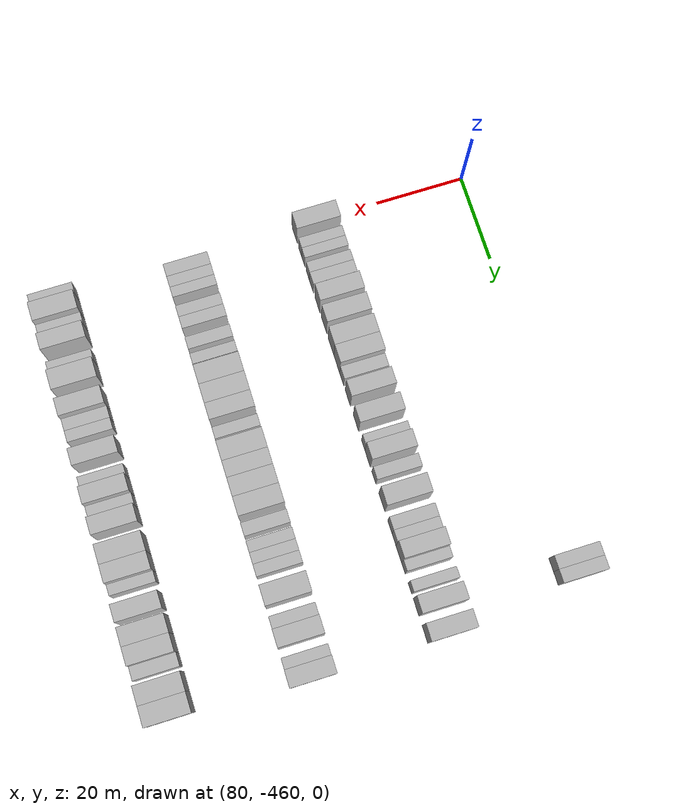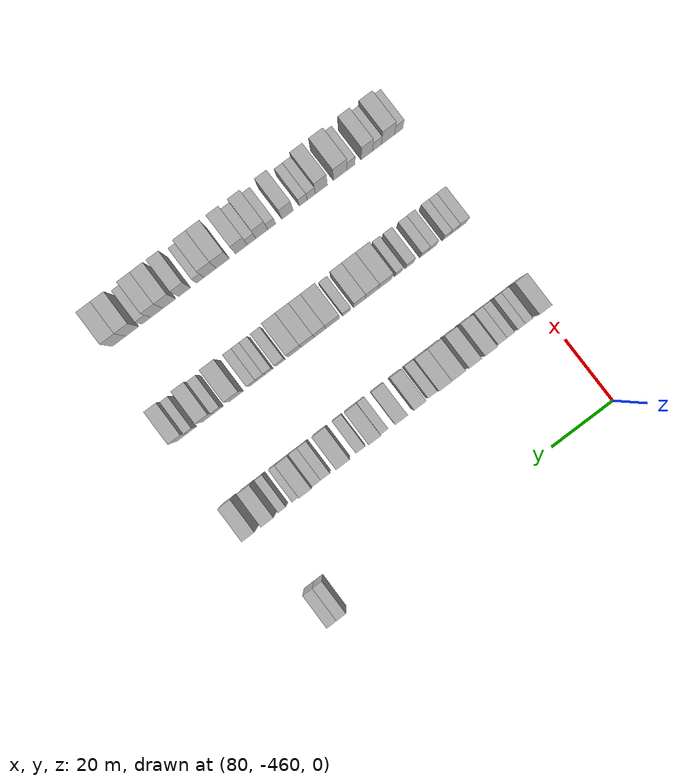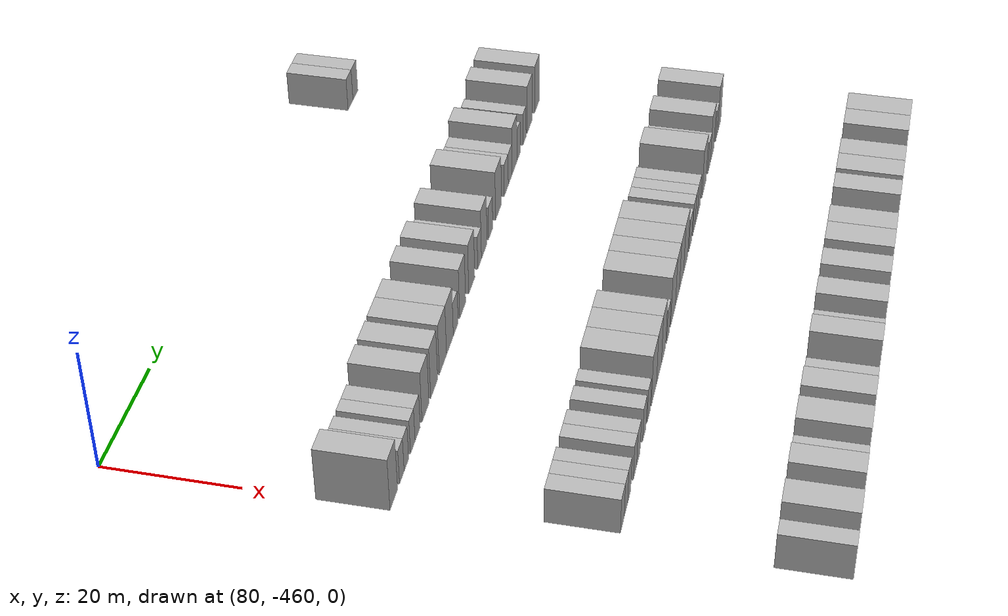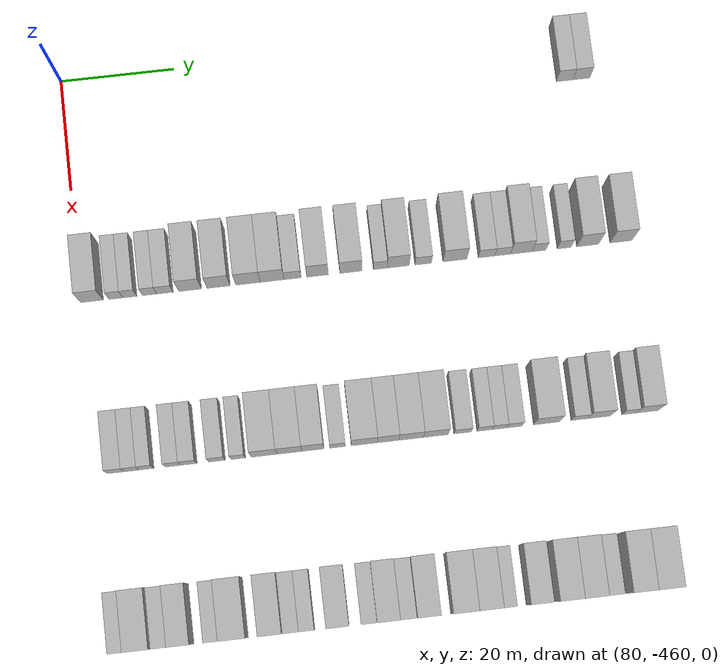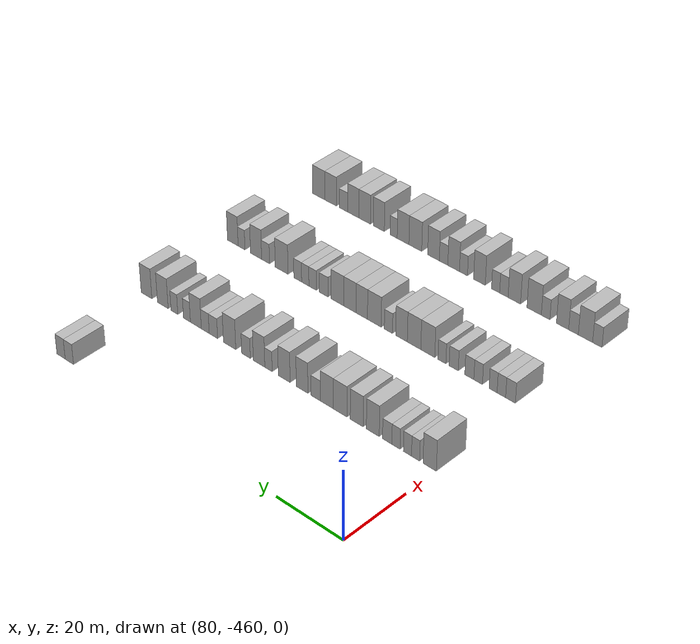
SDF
<sdf version="1.6">
 <world name="default">
  <model name="building_472">
   <static>1</static>
   <pose>85.0000 -371.5227 0 0.000000 0.000000 0.000000</pose>
   <link name="link">
    <pose>0 0 3.00 0 0 0</pose>
    <collision name="collision"><geometry><box><size>10.0000 2.9728 6.0000</size></box></geometry></collision>
    <visual name="visual">
     <cast_shadows>0</cast_shadows>
     <geometry><box><size>10.0000 2.9728 6.0000</size></box></geometry>
     <material>
      <script>
       <uri>model://HANNAS_wall/materials/scripts</uri>
       <uri>model://HANNAS_wall/materials/textures</uri>
       <name>vrc/HANNAS_wall</name>
      </script>
     </material>
    </visual>
   </link>
  </model>
  <model name="building_473">
   <static>1</static>
   <pose>85.0000 -368.5415 0 0.000000 0.000000 0.000000</pose>
   <link name="link">
    <pose>0 0 3.00 0 0 0</pose>
    <collision name="collision"><geometry><box><size>10.0000 2.9896 6.0000</size></box></geometry></collision>
    <visual name="visual">
     <cast_shadows>0</cast_shadows>
     <geometry><box><size>10.0000 2.9896 6.0000</size></box></geometry>
     <material>
      <script>
       <uri>model://HANNAS_wall/materials/scripts</uri>
       <uri>model://HANNAS_wall/materials/textures</uri>
       <name>vrc/HANNAS_wall</name>
      </script>
     </material>
    </visual>
   </link>
  </model>
  <model name="building_681">
   <static>1</static>
   <pose>115.0000 -458.0410 0 0.000000 0.000000 0.000000</pose>
   <link name="link">
    <pose>0 0 4.50 0 0 0</pose>
    <collision name="collision"><geometry><box><size>10.0000 3.9179 9.0000</size></box></geometry></collision>
    <visual name="visual">
     <cast_shadows>0</cast_shadows>
     <geometry><box><size>10.0000 3.9179 9.0000</size></box></geometry>
     <material>
      <script>
       <uri>model://HANNAS_wall/materials/scripts</uri>
       <uri>model://HANNAS_wall/materials/textures</uri>
       <name>vrc/HANNAS_wall</name>
      </script>
     </material>
    </visual>
   </link>
  </model>
  <model name="building_682">
   <static>1</static>
   <pose>115.0000 -453.8759 0 0.000000 0.000000 0.000000</pose>
   <link name="link">
    <pose>0 0 3.00 0 0 0</pose>
    <collision name="collision"><geometry><box><size>10.0000 2.4124 6.0000</size></box></geometry></collision>
    <visual name="visual">
     <cast_shadows>0</cast_shadows>
     <geometry><box><size>10.0000 2.4124 6.0000</size></box></geometry>
     <material>
      <script>
       <uri>model://HANNAS_wall/materials/scripts</uri>
       <uri>model://HANNAS_wall/materials/textures</uri>
       <name>vrc/HANNAS_wall</name>
      </script>
     </material>
    </visual>
   </link>
  </model>
  <model name="building_683">
   <static>1</static>
   <pose>115.0000 -451.4616 0 0.000000 0.000000 0.000000</pose>
   <link name="link">
    <pose>0 0 3.00 0 0 0</pose>
    <collision name="collision"><geometry><box><size>10.0000 2.4162 6.0000</size></box></geometry></collision>
    <visual name="visual">
     <cast_shadows>0</cast_shadows>
     <geometry><box><size>10.0000 2.4162 6.0000</size></box></geometry>
     <material>
      <script>
       <uri>model://HANNAS_wall/materials/scripts</uri>
       <uri>model://HANNAS_wall/materials/textures</uri>
       <name>vrc/HANNAS_wall</name>
      </script>
     </material>
    </visual>
   </link>
  </model>
  <model name="building_684">
   <static>1</static>
   <pose>115.0000 -448.0197 0 0.000000 0.000000 0.000000</pose>
   <link name="link">
    <pose>0 0 3.00 0 0 0</pose>
    <collision name="collision"><geometry><box><size>10.0000 2.4676 6.0000</size></box></geometry></collision>
    <visual name="visual">
     <cast_shadows>0</cast_shadows>
     <geometry><box><size>10.0000 2.4676 6.0000</size></box></geometry>
     <material>
      <script>
       <uri>model://HANNAS_wall/materials/scripts</uri>
       <uri>model://HANNAS_wall/materials/textures</uri>
       <name>vrc/HANNAS_wall</name>
      </script>
     </material>
    </visual>
   </link>
  </model>
  <model name="building_685">
   <static>1</static>
   <pose>115.0000 -445.3713 0 0.000000 0.000000 0.000000</pose>
   <link name="link">
    <pose>0 0 3.00 0 0 0</pose>
    <collision name="collision"><geometry><box><size>10.0000 2.8291 6.0000</size></box></geometry></collision>
    <visual name="visual">
     <cast_shadows>0</cast_shadows>
     <geometry><box><size>10.0000 2.8291 6.0000</size></box></geometry>
     <material>
      <script>
       <uri>model://HANNAS_wall/materials/scripts</uri>
       <uri>model://HANNAS_wall/materials/textures</uri>
       <name>vrc/HANNAS_wall</name>
      </script>
     </material>
    </visual>
   </link>
  </model>
  <model name="building_686">
   <static>1</static>
   <pose>115.0000 -440.9901 0 0.000000 0.000000 0.000000</pose>
   <link name="link">
    <pose>0 0 4.50 0 0 0</pose>
    <collision name="collision"><geometry><box><size>10.0000 3.9334 9.0000</size></box></geometry></collision>
    <visual name="visual">
     <cast_shadows>0</cast_shadows>
     <geometry><box><size>10.0000 3.9334 9.0000</size></box></geometry>
     <material>
      <script>
       <uri>model://HANNAS_wall/materials/scripts</uri>
       <uri>model://HANNAS_wall/materials/textures</uri>
       <name>vrc/HANNAS_wall</name>
      </script>
     </material>
    </visual>
   </link>
  </model>
  <model name="building_687">
   <static>1</static>
   <pose>115.0000 -436.0256 0 0.000000 0.000000 0.000000</pose>
   <link name="link">
    <pose>0 0 4.50 0 0 0</pose>
    <collision name="collision"><geometry><box><size>10.0000 3.9956 9.0000</size></box></geometry></collision>
    <visual name="visual">
     <cast_shadows>0</cast_shadows>
     <geometry><box><size>10.0000 3.9956 9.0000</size></box></geometry>
     <material>
      <script>
       <uri>model://HANNAS_wall/materials/scripts</uri>
       <uri>model://HANNAS_wall/materials/textures</uri>
       <name>vrc/HANNAS_wall</name>
      </script>
     </material>
    </visual>
   </link>
  </model>
  <model name="building_688">
   <static>1</static>
   <pose>115.0000 -430.8906 0 0.000000 0.000000 0.000000</pose>
   <link name="link">
    <pose>0 0 4.50 0 0 0</pose>
    <collision name="collision"><geometry><box><size>10.0000 4.2745 9.0000</size></box></geometry></collision>
    <visual name="visual">
     <cast_shadows>0</cast_shadows>
     <geometry><box><size>10.0000 4.2745 9.0000</size></box></geometry>
     <material>
      <script>
       <uri>model://HANNAS_wall/materials/scripts</uri>
       <uri>model://HANNAS_wall/materials/textures</uri>
       <name>vrc/HANNAS_wall</name>
      </script>
     </material>
    </visual>
   </link>
  </model>
  <model name="building_689">
   <static>1</static>
   <pose>115.0000 -426.6959 0 0.000000 0.000000 0.000000</pose>
   <link name="link">
    <pose>0 0 4.50 0 0 0</pose>
    <collision name="collision"><geometry><box><size>10.0000 4.1149 9.0000</size></box></geometry></collision>
    <visual name="visual">
     <cast_shadows>0</cast_shadows>
     <geometry><box><size>10.0000 4.1149 9.0000</size></box></geometry>
     <material>
      <script>
       <uri>model://HANNAS_wall/materials/scripts</uri>
       <uri>model://HANNAS_wall/materials/textures</uri>
       <name>vrc/HANNAS_wall</name>
      </script>
     </material>
    </visual>
   </link>
  </model>
  <model name="building_690">
   <static>1</static>
   <pose>115.0000 -423.1592 0 0.000000 0.000000 0.000000</pose>
   <link name="link">
    <pose>0 0 3.00 0 0 0</pose>
    <collision name="collision"><geometry><box><size>10.0000 2.9584 6.0000</size></box></geometry></collision>
    <visual name="visual">
     <cast_shadows>0</cast_shadows>
     <geometry><box><size>10.0000 2.9584 6.0000</size></box></geometry>
     <material>
      <script>
       <uri>model://HANNAS_wall/materials/scripts</uri>
       <uri>model://HANNAS_wall/materials/textures</uri>
       <name>vrc/HANNAS_wall</name>
      </script>
     </material>
    </visual>
   </link>
  </model>
  <model name="building_691">
   <static>1</static>
   <pose>115.0000 -418.8055 0 0.000000 0.000000 0.000000</pose>
   <link name="link">
    <pose>0 0 4.50 0 0 0</pose>
    <collision name="collision"><geometry><box><size>10.0000 3.7490 9.0000</size></box></geometry></collision>
    <visual name="visual">
     <cast_shadows>0</cast_shadows>
     <geometry><box><size>10.0000 3.7490 9.0000</size></box></geometry>
     <material>
      <script>
       <uri>model://HANNAS_wall/materials/scripts</uri>
       <uri>model://HANNAS_wall/materials/textures</uri>
       <name>vrc/HANNAS_wall</name>
      </script>
     </material>
    </visual>
   </link>
  </model>
  <model name="building_692">
   <static>1</static>
   <pose>115.0000 -413.0000 0 0.000000 0.000000 0.000000</pose>
   <link name="link">
    <pose>0 0 4.50 0 0 0</pose>
    <collision name="collision"><geometry><box><size>10.0000 3.8620 9.0000</size></box></geometry></collision>
    <visual name="visual">
     <cast_shadows>0</cast_shadows>
     <geometry><box><size>10.0000 3.8620 9.0000</size></box></geometry>
     <material>
      <script>
       <uri>model://HANNAS_wall/materials/scripts</uri>
       <uri>model://HANNAS_wall/materials/textures</uri>
       <name>vrc/HANNAS_wall</name>
      </script>
     </material>
    </visual>
   </link>
  </model>
  <model name="building_693">
   <static>1</static>
   <pose>115.0000 -407.8495 0 0.000000 0.000000 0.000000</pose>
   <link name="link">
    <pose>0 0 3.00 0 0 0</pose>
    <collision name="collision"><geometry><box><size>10.0000 2.4389 6.0000</size></box></geometry></collision>
    <visual name="visual">
     <cast_shadows>0</cast_shadows>
     <geometry><box><size>10.0000 2.4389 6.0000</size></box></geometry>
     <material>
      <script>
       <uri>model://HANNAS_wall/materials/scripts</uri>
       <uri>model://HANNAS_wall/materials/textures</uri>
       <name>vrc/HANNAS_wall</name>
      </script>
     </material>
    </visual>
   </link>
  </model>
  <model name="building_694">
   <static>1</static>
   <pose>115.0000 -404.7226 0 0.000000 0.000000 0.000000</pose>
   <link name="link">
    <pose>0 0 4.50 0 0 0</pose>
    <collision name="collision"><geometry><box><size>10.0000 3.8150 9.0000</size></box></geometry></collision>
    <visual name="visual">
     <cast_shadows>0</cast_shadows>
     <geometry><box><size>10.0000 3.8150 9.0000</size></box></geometry>
     <material>
      <script>
       <uri>model://HANNAS_wall/materials/scripts</uri>
       <uri>model://HANNAS_wall/materials/textures</uri>
       <name>vrc/HANNAS_wall</name>
      </script>
     </material>
    </visual>
   </link>
  </model>
  <model name="building_695">
   <static>1</static>
   <pose>115.0000 -400.3689 0 0.000000 0.000000 0.000000</pose>
   <link name="link">
    <pose>0 0 3.00 0 0 0</pose>
    <collision name="collision"><geometry><box><size>10.0000 2.8924 6.0000</size></box></geometry></collision>
    <visual name="visual">
     <cast_shadows>0</cast_shadows>
     <geometry><box><size>10.0000 2.8924 6.0000</size></box></geometry>
     <material>
      <script>
       <uri>model://HANNAS_wall/materials/scripts</uri>
       <uri>model://HANNAS_wall/materials/textures</uri>
       <name>vrc/HANNAS_wall</name>
      </script>
     </material>
    </visual>
   </link>
  </model>
  <model name="building_696">
   <static>1</static>
   <pose>115.0000 -394.8308 0 0.000000 0.000000 0.000000</pose>
   <link name="link">
    <pose>0 0 4.50 0 0 0</pose>
    <collision name="collision"><geometry><box><size>10.0000 4.1839 9.0000</size></box></geometry></collision>
    <visual name="visual">
     <cast_shadows>0</cast_shadows>
     <geometry><box><size>10.0000 4.1839 9.0000</size></box></geometry>
     <material>
      <script>
       <uri>model://HANNAS_wall/materials/scripts</uri>
       <uri>model://HANNAS_wall/materials/textures</uri>
       <name>vrc/HANNAS_wall</name>
      </script>
     </material>
    </visual>
   </link>
  </model>
  <model name="building_697">
   <static>1</static>
   <pose>115.0000 -389.2907 0 0.000000 0.000000 0.000000</pose>
   <link name="link">
    <pose>0 0 3.00 0 0 0</pose>
    <collision name="collision"><geometry><box><size>10.0000 2.8963 6.0000</size></box></geometry></collision>
    <visual name="visual">
     <cast_shadows>0</cast_shadows>
     <geometry><box><size>10.0000 2.8963 6.0000</size></box></geometry>
     <material>
      <script>
       <uri>model://HANNAS_wall/materials/scripts</uri>
       <uri>model://HANNAS_wall/materials/textures</uri>
       <name>vrc/HANNAS_wall</name>
      </script>
     </material>
    </visual>
   </link>
  </model>
  <model name="building_698">
   <static>1</static>
   <pose>115.0000 -386.4846 0 0.000000 0.000000 0.000000</pose>
   <link name="link">
    <pose>0 0 3.00 0 0 0</pose>
    <collision name="collision"><geometry><box><size>10.0000 2.7159 6.0000</size></box></geometry></collision>
    <visual name="visual">
     <cast_shadows>0</cast_shadows>
     <geometry><box><size>10.0000 2.7159 6.0000</size></box></geometry>
     <material>
      <script>
       <uri>model://HANNAS_wall/materials/scripts</uri>
       <uri>model://HANNAS_wall/materials/textures</uri>
       <name>vrc/HANNAS_wall</name>
      </script>
     </material>
    </visual>
   </link>
  </model>
  <model name="building_699">
   <static>1</static>
   <pose>115.0000 -383.2274 0 0.000000 0.000000 0.000000</pose>
   <link name="link">
    <pose>0 0 4.50 0 0 0</pose>
    <collision name="collision"><geometry><box><size>10.0000 3.7985 9.0000</size></box></geometry></collision>
    <visual name="visual">
     <cast_shadows>0</cast_shadows>
     <geometry><box><size>10.0000 3.7985 9.0000</size></box></geometry>
     <material>
      <script>
       <uri>model://HANNAS_wall/materials/scripts</uri>
       <uri>model://HANNAS_wall/materials/textures</uri>
       <name>vrc/HANNAS_wall</name>
      </script>
     </material>
    </visual>
   </link>
  </model>
  <model name="building_700">
   <static>1</static>
   <pose>115.0000 -380.1148 0 0.000000 0.000000 0.000000</pose>
   <link name="link">
    <pose>0 0 3.00 0 0 0</pose>
    <collision name="collision"><geometry><box><size>10.0000 2.4266 6.0000</size></box></geometry></collision>
    <visual name="visual">
     <cast_shadows>0</cast_shadows>
     <geometry><box><size>10.0000 2.4266 6.0000</size></box></geometry>
     <material>
      <script>
       <uri>model://HANNAS_wall/materials/scripts</uri>
       <uri>model://HANNAS_wall/materials/textures</uri>
       <name>vrc/HANNAS_wall</name>
      </script>
     </material>
    </visual>
   </link>
  </model>
  <model name="building_701">
   <static>1</static>
   <pose>115.0000 -375.6931 0 0.000000 0.000000 0.000000</pose>
   <link name="link">
    <pose>0 0 3.00 0 0 0</pose>
    <collision name="collision"><geometry><box><size>10.0000 2.4169 6.0000</size></box></geometry></collision>
    <visual name="visual">
     <cast_shadows>0</cast_shadows>
     <geometry><box><size>10.0000 2.4169 6.0000</size></box></geometry>
     <material>
      <script>
       <uri>model://HANNAS_wall/materials/scripts</uri>
       <uri>model://HANNAS_wall/materials/textures</uri>
       <name>vrc/HANNAS_wall</name>
      </script>
     </material>
    </visual>
   </link>
  </model>
  <model name="building_702">
   <static>1</static>
   <pose>115.0000 -371.5677 0 0.000000 0.000000 0.000000</pose>
   <link name="link">
    <pose>0 0 4.50 0 0 0</pose>
    <collision name="collision"><geometry><box><size>10.0000 3.8339 9.0000</size></box></geometry></collision>
    <visual name="visual">
     <cast_shadows>0</cast_shadows>
     <geometry><box><size>10.0000 3.8339 9.0000</size></box></geometry>
     <material>
      <script>
       <uri>model://HANNAS_wall/materials/scripts</uri>
       <uri>model://HANNAS_wall/materials/textures</uri>
       <name>vrc/HANNAS_wall</name>
      </script>
     </material>
    </visual>
   </link>
  </model>
  <model name="building_703">
   <static>1</static>
   <pose>115.0000 -365.7231 0 0.000000 0.000000 0.000000</pose>
   <link name="link">
    <pose>0 0 4.50 0 0 0</pose>
    <collision name="collision"><geometry><box><size>10.0000 3.8551 9.0000</size></box></geometry></collision>
    <visual name="visual">
     <cast_shadows>0</cast_shadows>
     <geometry><box><size>10.0000 3.8551 9.0000</size></box></geometry>
     <material>
      <script>
       <uri>model://HANNAS_wall/materials/scripts</uri>
       <uri>model://HANNAS_wall/materials/textures</uri>
       <name>vrc/HANNAS_wall</name>
      </script>
     </material>
    </visual>
   </link>
  </model>
  <model name="building_920">
   <static>1</static>
   <pose>145.0000 -456.5459 0 0.000000 0.000000 0.000000</pose>
   <link name="link">
    <pose>0 0 3.00 0 0 0</pose>
    <collision name="collision"><geometry><box><size>10.0000 2.9082 6.0000</size></box></geometry></collision>
    <visual name="visual">
     <cast_shadows>0</cast_shadows>
     <geometry><box><size>10.0000 2.9082 6.0000</size></box></geometry>
     <material>
      <script>
       <uri>model://HANNAS_wall/materials/scripts</uri>
       <uri>model://HANNAS_wall/materials/textures</uri>
       <name>vrc/HANNAS_wall</name>
      </script>
     </material>
    </visual>
   </link>
  </model>
  <model name="building_921">
   <static>1</static>
   <pose>145.0000 -453.8123 0 0.000000 0.000000 0.000000</pose>
   <link name="link">
    <pose>0 0 3.00 0 0 0</pose>
    <collision name="collision"><geometry><box><size>10.0000 2.5590 6.0000</size></box></geometry></collision>
    <visual name="visual">
     <cast_shadows>0</cast_shadows>
     <geometry><box><size>10.0000 2.5590 6.0000</size></box></geometry>
     <material>
      <script>
       <uri>model://HANNAS_wall/materials/scripts</uri>
       <uri>model://HANNAS_wall/materials/textures</uri>
       <name>vrc/HANNAS_wall</name>
      </script>
     </material>
    </visual>
   </link>
  </model>
  <model name="building_922">
   <static>1</static>
   <pose>145.0000 -451.3277 0 0.000000 0.000000 0.000000</pose>
   <link name="link">
    <pose>0 0 3.00 0 0 0</pose>
    <collision name="collision"><geometry><box><size>10.0000 2.4100 6.0000</size></box></geometry></collision>
    <visual name="visual">
     <cast_shadows>0</cast_shadows>
     <geometry><box><size>10.0000 2.4100 6.0000</size></box></geometry>
     <material>
      <script>
       <uri>model://HANNAS_wall/materials/scripts</uri>
       <uri>model://HANNAS_wall/materials/textures</uri>
       <name>vrc/HANNAS_wall</name>
      </script>
     </material>
    </visual>
   </link>
  </model>
  <model name="building_923">
   <static>1</static>
   <pose>145.0000 -446.8149 0 0.000000 0.000000 0.000000</pose>
   <link name="link">
    <pose>0 0 3.00 0 0 0</pose>
    <collision name="collision"><geometry><box><size>10.0000 2.6157 6.0000</size></box></geometry></collision>
    <visual name="visual">
     <cast_shadows>0</cast_shadows>
     <geometry><box><size>10.0000 2.6157 6.0000</size></box></geometry>
     <material>
      <script>
       <uri>model://HANNAS_wall/materials/scripts</uri>
       <uri>model://HANNAS_wall/materials/textures</uri>
       <name>vrc/HANNAS_wall</name>
      </script>
     </material>
    </visual>
   </link>
  </model>
  <model name="building_924">
   <static>1</static>
   <pose>145.0000 -444.1235 0 0.000000 0.000000 0.000000</pose>
   <link name="link">
    <pose>0 0 3.00 0 0 0</pose>
    <collision name="collision"><geometry><box><size>10.0000 2.7671 6.0000</size></box></geometry></collision>
    <visual name="visual">
     <cast_shadows>0</cast_shadows>
     <geometry><box><size>10.0000 2.7671 6.0000</size></box></geometry>
     <material>
      <script>
       <uri>model://HANNAS_wall/materials/scripts</uri>
       <uri>model://HANNAS_wall/materials/textures</uri>
       <name>vrc/HANNAS_wall</name>
      </script>
     </material>
    </visual>
   </link>
  </model>
  <model name="building_925">
   <static>1</static>
   <pose>145.0000 -439.3240 0 0.000000 0.000000 0.000000</pose>
   <link name="link">
    <pose>0 0 3.00 0 0 0</pose>
    <collision name="collision"><geometry><box><size>10.0000 2.8319 6.0000</size></box></geometry></collision>
    <visual name="visual">
     <cast_shadows>0</cast_shadows>
     <geometry><box><size>10.0000 2.8319 6.0000</size></box></geometry>
     <material>
      <script>
       <uri>model://HANNAS_wall/materials/scripts</uri>
       <uri>model://HANNAS_wall/materials/textures</uri>
       <name>vrc/HANNAS_wall</name>
      </script>
     </material>
    </visual>
   </link>
  </model>
  <model name="building_926">
   <static>1</static>
   <pose>145.0000 -435.6739 0 0.000000 0.000000 0.000000</pose>
   <link name="link">
    <pose>0 0 3.00 0 0 0</pose>
    <collision name="collision"><geometry><box><size>10.0000 2.4682 6.0000</size></box></geometry></collision>
    <visual name="visual">
     <cast_shadows>0</cast_shadows>
     <geometry><box><size>10.0000 2.4682 6.0000</size></box></geometry>
     <material>
      <script>
       <uri>model://HANNAS_wall/materials/scripts</uri>
       <uri>model://HANNAS_wall/materials/textures</uri>
       <name>vrc/HANNAS_wall</name>
      </script>
     </material>
    </visual>
   </link>
  </model>
  <model name="building_927">
   <static>1</static>
   <pose>145.0000 -431.2378 0 0.000000 0.000000 0.000000</pose>
   <link name="link">
    <pose>0 0 4.50 0 0 0</pose>
    <collision name="collision"><geometry><box><size>10.0000 4.4040 9.0000</size></box></geometry></collision>
    <visual name="visual">
     <cast_shadows>0</cast_shadows>
     <geometry><box><size>10.0000 4.4040 9.0000</size></box></geometry>
     <material>
      <script>
       <uri>model://HANNAS_wall/materials/scripts</uri>
       <uri>model://HANNAS_wall/materials/textures</uri>
       <name>vrc/HANNAS_wall</name>
      </script>
     </material>
    </visual>
   </link>
  </model>
  <model name="building_928">
   <static>1</static>
   <pose>145.0000 -426.8898 0 0.000000 0.000000 0.000000</pose>
   <link name="link">
    <pose>0 0 4.50 0 0 0</pose>
    <collision name="collision"><geometry><box><size>10.0000 4.2920 9.0000</size></box></geometry></collision>
    <visual name="visual">
     <cast_shadows>0</cast_shadows>
     <geometry><box><size>10.0000 4.2920 9.0000</size></box></geometry>
     <material>
      <script>
       <uri>model://HANNAS_wall/materials/scripts</uri>
       <uri>model://HANNAS_wall/materials/textures</uri>
       <name>vrc/HANNAS_wall</name>
      </script>
     </material>
    </visual>
   </link>
  </model>
  <model name="building_929">
   <static>1</static>
   <pose>145.0000 -422.8724 0 0.000000 0.000000 0.000000</pose>
   <link name="link">
    <pose>0 0 4.50 0 0 0</pose>
    <collision name="collision"><geometry><box><size>10.0000 3.7428 9.0000</size></box></geometry></collision>
    <visual name="visual">
     <cast_shadows>0</cast_shadows>
     <geometry><box><size>10.0000 3.7428 9.0000</size></box></geometry>
     <material>
      <script>
       <uri>model://HANNAS_wall/materials/scripts</uri>
       <uri>model://HANNAS_wall/materials/textures</uri>
       <name>vrc/HANNAS_wall</name>
      </script>
     </material>
    </visual>
   </link>
  </model>
  <model name="building_930">
   <static>1</static>
   <pose>145.0000 -418.6750 0 0.000000 0.000000 0.000000</pose>
   <link name="link">
    <pose>0 0 3.00 0 0 0</pose>
    <collision name="collision"><geometry><box><size>10.0000 2.6520 6.0000</size></box></geometry></collision>
    <visual name="visual">
     <cast_shadows>0</cast_shadows>
     <geometry><box><size>10.0000 2.6520 6.0000</size></box></geometry>
     <material>
      <script>
       <uri>model://HANNAS_wall/materials/scripts</uri>
       <uri>model://HANNAS_wall/materials/textures</uri>
       <name>vrc/HANNAS_wall</name>
      </script>
     </material>
    </visual>
   </link>
  </model>
  <model name="building_931">
   <static>1</static>
   <pose>145.0000 -414.1032 0 0.000000 0.000000 0.000000</pose>
   <link name="link">
    <pose>0 0 4.50 0 0 0</pose>
    <collision name="collision"><geometry><box><size>10.0000 4.4917 9.0000</size></box></geometry></collision>
    <visual name="visual">
     <cast_shadows>0</cast_shadows>
     <geometry><box><size>10.0000 4.4917 9.0000</size></box></geometry>
     <material>
      <script>
       <uri>model://HANNAS_wall/materials/scripts</uri>
       <uri>model://HANNAS_wall/materials/textures</uri>
       <name>vrc/HANNAS_wall</name>
      </script>
     </material>
    </visual>
   </link>
  </model>
  <model name="building_932">
   <static>1</static>
   <pose>145.0000 -410.0078 0 0.000000 0.000000 0.000000</pose>
   <link name="link">
    <pose>0 0 4.50 0 0 0</pose>
    <collision name="collision"><geometry><box><size>10.0000 3.6991 9.0000</size></box></geometry></collision>
    <visual name="visual">
     <cast_shadows>0</cast_shadows>
     <geometry><box><size>10.0000 3.6991 9.0000</size></box></geometry>
     <material>
      <script>
       <uri>model://HANNAS_wall/materials/scripts</uri>
       <uri>model://HANNAS_wall/materials/textures</uri>
       <name>vrc/HANNAS_wall</name>
      </script>
     </material>
    </visual>
   </link>
  </model>
  <model name="building_933">
   <static>1</static>
   <pose>145.0000 -406.0698 0 0.000000 0.000000 0.000000</pose>
   <link name="link">
    <pose>0 0 4.50 0 0 0</pose>
    <collision name="collision"><geometry><box><size>10.0000 4.1769 9.0000</size></box></geometry></collision>
    <visual name="visual">
     <cast_shadows>0</cast_shadows>
     <geometry><box><size>10.0000 4.1769 9.0000</size></box></geometry>
     <material>
      <script>
       <uri>model://HANNAS_wall/materials/scripts</uri>
       <uri>model://HANNAS_wall/materials/textures</uri>
       <name>vrc/HANNAS_wall</name>
      </script>
     </material>
    </visual>
   </link>
  </model>
  <model name="building_934">
   <static>1</static>
   <pose>145.0000 -401.8538 0 0.000000 0.000000 0.000000</pose>
   <link name="link">
    <pose>0 0 4.50 0 0 0</pose>
    <collision name="collision"><geometry><box><size>10.0000 4.2552 9.0000</size></box></geometry></collision>
    <visual name="visual">
     <cast_shadows>0</cast_shadows>
     <geometry><box><size>10.0000 4.2552 9.0000</size></box></geometry>
     <material>
      <script>
       <uri>model://HANNAS_wall/materials/scripts</uri>
       <uri>model://HANNAS_wall/materials/textures</uri>
       <name>vrc/HANNAS_wall</name>
      </script>
     </material>
    </visual>
   </link>
  </model>
  <model name="building_935">
   <static>1</static>
   <pose>145.0000 -397.2430 0 0.000000 0.000000 0.000000</pose>
   <link name="link">
    <pose>0 0 3.00 0 0 0</pose>
    <collision name="collision"><geometry><box><size>10.0000 2.9664 6.0000</size></box></geometry></collision>
    <visual name="visual">
     <cast_shadows>0</cast_shadows>
     <geometry><box><size>10.0000 2.9664 6.0000</size></box></geometry>
     <material>
      <script>
       <uri>model://HANNAS_wall/materials/scripts</uri>
       <uri>model://HANNAS_wall/materials/textures</uri>
       <name>vrc/HANNAS_wall</name>
      </script>
     </material>
    </visual>
   </link>
  </model>
  <model name="building_936">
   <static>1</static>
   <pose>145.0000 -393.4925 0 0.000000 0.000000 0.000000</pose>
   <link name="link">
    <pose>0 0 3.00 0 0 0</pose>
    <collision name="collision"><geometry><box><size>10.0000 2.5346 6.0000</size></box></geometry></collision>
    <visual name="visual">
     <cast_shadows>0</cast_shadows>
     <geometry><box><size>10.0000 2.5346 6.0000</size></box></geometry>
     <material>
      <script>
       <uri>model://HANNAS_wall/materials/scripts</uri>
       <uri>model://HANNAS_wall/materials/textures</uri>
       <name>vrc/HANNAS_wall</name>
      </script>
     </material>
    </visual>
   </link>
  </model>
  <model name="building_937">
   <static>1</static>
   <pose>145.0000 -390.9748 0 0.000000 0.000000 0.000000</pose>
   <link name="link">
    <pose>0 0 3.00 0 0 0</pose>
    <collision name="collision"><geometry><box><size>10.0000 2.5007 6.0000</size></box></geometry></collision>
    <visual name="visual">
     <cast_shadows>0</cast_shadows>
     <geometry><box><size>10.0000 2.5007 6.0000</size></box></geometry>
     <material>
      <script>
       <uri>model://HANNAS_wall/materials/scripts</uri>
       <uri>model://HANNAS_wall/materials/textures</uri>
       <name>vrc/HANNAS_wall</name>
      </script>
     </material>
    </visual>
   </link>
  </model>
  <model name="building_938">
   <static>1</static>
   <pose>145.0000 -388.3744 0 0.000000 0.000000 0.000000</pose>
   <link name="link">
    <pose>0 0 3.00 0 0 0</pose>
    <collision name="collision"><geometry><box><size>10.0000 2.7002 6.0000</size></box></geometry></collision>
    <visual name="visual">
     <cast_shadows>0</cast_shadows>
     <geometry><box><size>10.0000 2.7002 6.0000</size></box></geometry>
     <material>
      <script>
       <uri>model://HANNAS_wall/materials/scripts</uri>
       <uri>model://HANNAS_wall/materials/textures</uri>
       <name>vrc/HANNAS_wall</name>
      </script>
     </material>
    </visual>
   </link>
  </model>
  <model name="building_939">
   <static>1</static>
   <pose>145.0000 -382.7848 0 0.000000 0.000000 0.000000</pose>
   <link name="link">
    <pose>0 0 4.50 0 0 0</pose>
    <collision name="collision"><geometry><box><size>10.0000 4.4790 9.0000</size></box></geometry></collision>
    <visual name="visual">
     <cast_shadows>0</cast_shadows>
     <geometry><box><size>10.0000 4.4790 9.0000</size></box></geometry>
     <material>
      <script>
       <uri>model://HANNAS_wall/materials/scripts</uri>
       <uri>model://HANNAS_wall/materials/textures</uri>
       <name>vrc/HANNAS_wall</name>
      </script>
     </material>
    </visual>
   </link>
  </model>
  <model name="building_940">
   <static>1</static>
   <pose>145.0000 -377.1418 0 0.000000 0.000000 0.000000</pose>
   <link name="link">
    <pose>0 0 3.00 0 0 0</pose>
    <collision name="collision"><geometry><box><size>10.0000 2.8070 6.0000</size></box></geometry></collision>
    <visual name="visual">
     <cast_shadows>0</cast_shadows>
     <geometry><box><size>10.0000 2.8070 6.0000</size></box></geometry>
     <material>
      <script>
       <uri>model://HANNAS_wall/materials/scripts</uri>
       <uri>model://HANNAS_wall/materials/textures</uri>
       <name>vrc/HANNAS_wall</name>
      </script>
     </material>
    </visual>
   </link>
  </model>
  <model name="building_941">
   <static>1</static>
   <pose>145.0000 -373.7698 0 0.000000 0.000000 0.000000</pose>
   <link name="link">
    <pose>0 0 4.50 0 0 0</pose>
    <collision name="collision"><geometry><box><size>10.0000 3.9369 9.0000</size></box></geometry></collision>
    <visual name="visual">
     <cast_shadows>0</cast_shadows>
     <geometry><box><size>10.0000 3.9369 9.0000</size></box></geometry>
     <material>
      <script>
       <uri>model://HANNAS_wall/materials/scripts</uri>
       <uri>model://HANNAS_wall/materials/textures</uri>
       <name>vrc/HANNAS_wall</name>
      </script>
     </material>
    </visual>
   </link>
  </model>
  <model name="building_942">
   <static>1</static>
   <pose>145.0000 -368.5660 0 0.000000 0.000000 0.000000</pose>
   <link name="link">
    <pose>0 0 3.00 0 0 0</pose>
    <collision name="collision"><geometry><box><size>10.0000 2.4708 6.0000</size></box></geometry></collision>
    <visual name="visual">
     <cast_shadows>0</cast_shadows>
     <geometry><box><size>10.0000 2.4708 6.0000</size></box></geometry>
     <material>
      <script>
       <uri>model://HANNAS_wall/materials/scripts</uri>
       <uri>model://HANNAS_wall/materials/textures</uri>
       <name>vrc/HANNAS_wall</name>
      </script>
     </material>
    </visual>
   </link>
  </model>
  <model name="building_943">
   <static>1</static>
   <pose>145.0000 -365.4192 0 0.000000 0.000000 0.000000</pose>
   <link name="link">
    <pose>0 0 4.50 0 0 0</pose>
    <collision name="collision"><geometry><box><size>10.0000 3.8228 9.0000</size></box></geometry></collision>
    <visual name="visual">
     <cast_shadows>0</cast_shadows>
     <geometry><box><size>10.0000 3.8228 9.0000</size></box></geometry>
     <material>
      <script>
       <uri>model://HANNAS_wall/materials/scripts</uri>
       <uri>model://HANNAS_wall/materials/textures</uri>
       <name>vrc/HANNAS_wall</name>
      </script>
     </material>
    </visual>
   </link>
  </model>
  <model name="building_1145">
   <static>1</static>
   <pose>175.0000 -458.6075 0 0.000000 0.000000 0.000000</pose>
   <link name="link">
    <pose>0 0 3.00 0 0 0</pose>
    <collision name="collision"><geometry><box><size>10.0000 2.7850 6.0000</size></box></geometry></collision>
    <visual name="visual">
     <cast_shadows>0</cast_shadows>
     <geometry><box><size>10.0000 2.7850 6.0000</size></box></geometry>
     <material>
      <script>
       <uri>model://HANNAS_wall/materials/scripts</uri>
       <uri>model://HANNAS_wall/materials/textures</uri>
       <name>vrc/HANNAS_wall</name>
      </script>
     </material>
    </visual>
   </link>
  </model>
  <model name="building_1146">
   <static>1</static>
   <pose>175.0000 -455.0592 0 0.000000 0.000000 0.000000</pose>
   <link name="link">
    <pose>0 0 4.50 0 0 0</pose>
    <collision name="collision"><geometry><box><size>10.0000 4.3116 9.0000</size></box></geometry></collision>
    <visual name="visual">
     <cast_shadows>0</cast_shadows>
     <geometry><box><size>10.0000 4.3116 9.0000</size></box></geometry>
     <material>
      <script>
       <uri>model://HANNAS_wall/materials/scripts</uri>
       <uri>model://HANNAS_wall/materials/textures</uri>
       <name>vrc/HANNAS_wall</name>
      </script>
     </material>
    </visual>
   </link>
  </model>
  <model name="building_1147">
   <static>1</static>
   <pose>175.0000 -451.4429 0 0.000000 0.000000 0.000000</pose>
   <link name="link">
    <pose>0 0 3.00 0 0 0</pose>
    <collision name="collision"><geometry><box><size>10.0000 2.9209 6.0000</size></box></geometry></collision>
    <visual name="visual">
     <cast_shadows>0</cast_shadows>
     <geometry><box><size>10.0000 2.9209 6.0000</size></box></geometry>
     <material>
      <script>
       <uri>model://HANNAS_wall/materials/scripts</uri>
       <uri>model://HANNAS_wall/materials/textures</uri>
       <name>vrc/HANNAS_wall</name>
      </script>
     </material>
    </visual>
   </link>
  </model>
  <model name="building_1148">
   <static>1</static>
   <pose>175.0000 -448.1087 0 0.000000 0.000000 0.000000</pose>
   <link name="link">
    <pose>0 0 4.50 0 0 0</pose>
    <collision name="collision"><geometry><box><size>10.0000 3.7474 9.0000</size></box></geometry></collision>
    <visual name="visual">
     <cast_shadows>0</cast_shadows>
     <geometry><box><size>10.0000 3.7474 9.0000</size></box></geometry>
     <material>
      <script>
       <uri>model://HANNAS_wall/materials/scripts</uri>
       <uri>model://HANNAS_wall/materials/textures</uri>
       <name>vrc/HANNAS_wall</name>
      </script>
     </material>
    </visual>
   </link>
  </model>
  <model name="building_1149">
   <static>1</static>
   <pose>175.0000 -442.9091 0 0.000000 0.000000 0.000000</pose>
   <link name="link">
    <pose>0 0 3.00 0 0 0</pose>
    <collision name="collision"><geometry><box><size>10.0000 2.6519 6.0000</size></box></geometry></collision>
    <visual name="visual">
     <cast_shadows>0</cast_shadows>
     <geometry><box><size>10.0000 2.6519 6.0000</size></box></geometry>
     <material>
      <script>
       <uri>model://HANNAS_wall/materials/scripts</uri>
       <uri>model://HANNAS_wall/materials/textures</uri>
       <name>vrc/HANNAS_wall</name>
      </script>
     </material>
    </visual>
   </link>
  </model>
  <model name="building_1150">
   <static>1</static>
   <pose>175.0000 -439.3401 0 0.000000 0.000000 0.000000</pose>
   <link name="link">
    <pose>0 0 4.50 0 0 0</pose>
    <collision name="collision"><geometry><box><size>10.0000 4.4860 9.0000</size></box></geometry></collision>
    <visual name="visual">
     <cast_shadows>0</cast_shadows>
     <geometry><box><size>10.0000 4.4860 9.0000</size></box></geometry>
     <material>
      <script>
       <uri>model://HANNAS_wall/materials/scripts</uri>
       <uri>model://HANNAS_wall/materials/textures</uri>
       <name>vrc/HANNAS_wall</name>
      </script>
     </material>
    </visual>
   </link>
  </model>
  <model name="building_1151">
   <static>1</static>
   <pose>175.0000 -433.1221 0 0.000000 0.000000 0.000000</pose>
   <link name="link">
    <pose>0 0 4.50 0 0 0</pose>
    <collision name="collision"><geometry><box><size>10.0000 3.9501 9.0000</size></box></geometry></collision>
    <visual name="visual">
     <cast_shadows>0</cast_shadows>
     <geometry><box><size>10.0000 3.9501 9.0000</size></box></geometry>
     <material>
      <script>
       <uri>model://HANNAS_wall/materials/scripts</uri>
       <uri>model://HANNAS_wall/materials/textures</uri>
       <name>vrc/HANNAS_wall</name>
      </script>
     </material>
    </visual>
   </link>
  </model>
  <model name="building_1152">
   <static>1</static>
   <pose>175.0000 -429.8082 0 0.000000 0.000000 0.000000</pose>
   <link name="link">
    <pose>0 0 3.00 0 0 0</pose>
    <collision name="collision"><geometry><box><size>10.0000 2.6777 6.0000</size></box></geometry></collision>
    <visual name="visual">
     <cast_shadows>0</cast_shadows>
     <geometry><box><size>10.0000 2.6777 6.0000</size></box></geometry>
     <material>
      <script>
       <uri>model://HANNAS_wall/materials/scripts</uri>
       <uri>model://HANNAS_wall/materials/textures</uri>
       <name>vrc/HANNAS_wall</name>
      </script>
     </material>
    </visual>
   </link>
  </model>
  <model name="building_1153">
   <static>1</static>
   <pose>175.0000 -427.1730 0 0.000000 0.000000 0.000000</pose>
   <link name="link">
    <pose>0 0 3.00 0 0 0</pose>
    <collision name="collision"><geometry><box><size>10.0000 2.5928 6.0000</size></box></geometry></collision>
    <visual name="visual">
     <cast_shadows>0</cast_shadows>
     <geometry><box><size>10.0000 2.5928 6.0000</size></box></geometry>
     <material>
      <script>
       <uri>model://HANNAS_wall/materials/scripts</uri>
       <uri>model://HANNAS_wall/materials/textures</uri>
       <name>vrc/HANNAS_wall</name>
      </script>
     </material>
    </visual>
   </link>
  </model>
  <model name="building_1154">
   <static>1</static>
   <pose>175.0000 -421.9896 0 0.000000 0.000000 0.000000</pose>
   <link name="link">
    <pose>0 0 4.50 0 0 0</pose>
    <collision name="collision"><geometry><box><size>10.0000 3.7740 9.0000</size></box></geometry></collision>
    <visual name="visual">
     <cast_shadows>0</cast_shadows>
     <geometry><box><size>10.0000 3.7740 9.0000</size></box></geometry>
     <material>
      <script>
       <uri>model://HANNAS_wall/materials/scripts</uri>
       <uri>model://HANNAS_wall/materials/textures</uri>
       <name>vrc/HANNAS_wall</name>
      </script>
     </material>
    </visual>
   </link>
  </model>
  <model name="building_1155">
   <static>1</static>
   <pose>175.0000 -416.7912 0 0.000000 0.000000 0.000000</pose>
   <link name="link">
    <pose>0 0 3.00 0 0 0</pose>
    <collision name="collision"><geometry><box><size>10.0000 2.6227 6.0000</size></box></geometry></collision>
    <visual name="visual">
     <cast_shadows>0</cast_shadows>
     <geometry><box><size>10.0000 2.6227 6.0000</size></box></geometry>
     <material>
      <script>
       <uri>model://HANNAS_wall/materials/scripts</uri>
       <uri>model://HANNAS_wall/materials/textures</uri>
       <name>vrc/HANNAS_wall</name>
      </script>
     </material>
    </visual>
   </link>
  </model>
  <model name="building_1156">
   <static>1</static>
   <pose>175.0000 -413.5626 0 0.000000 0.000000 0.000000</pose>
   <link name="link">
    <pose>0 0 4.50 0 0 0</pose>
    <collision name="collision"><geometry><box><size>10.0000 3.8346 9.0000</size></box></geometry></collision>
    <visual name="visual">
     <cast_shadows>0</cast_shadows>
     <geometry><box><size>10.0000 3.8346 9.0000</size></box></geometry>
     <material>
      <script>
       <uri>model://HANNAS_wall/materials/scripts</uri>
       <uri>model://HANNAS_wall/materials/textures</uri>
       <name>vrc/HANNAS_wall</name>
      </script>
     </material>
    </visual>
   </link>
  </model>
  <model name="building_1157">
   <static>1</static>
   <pose>175.0000 -410.2398 0 0.000000 0.000000 0.000000</pose>
   <link name="link">
    <pose>0 0 3.00 0 0 0</pose>
    <collision name="collision"><geometry><box><size>10.0000 2.8109 6.0000</size></box></geometry></collision>
    <visual name="visual">
     <cast_shadows>0</cast_shadows>
     <geometry><box><size>10.0000 2.8109 6.0000</size></box></geometry>
     <material>
      <script>
       <uri>model://HANNAS_wall/materials/scripts</uri>
       <uri>model://HANNAS_wall/materials/textures</uri>
       <name>vrc/HANNAS_wall</name>
      </script>
     </material>
    </visual>
   </link>
  </model>
  <model name="building_1158">
   <static>1</static>
   <pose>175.0000 -406.8968 0 0.000000 0.000000 0.000000</pose>
   <link name="link">
    <pose>0 0 4.50 0 0 0</pose>
    <collision name="collision"><geometry><box><size>10.0000 3.8751 9.0000</size></box></geometry></collision>
    <visual name="visual">
     <cast_shadows>0</cast_shadows>
     <geometry><box><size>10.0000 3.8751 9.0000</size></box></geometry>
     <material>
      <script>
       <uri>model://HANNAS_wall/materials/scripts</uri>
       <uri>model://HANNAS_wall/materials/textures</uri>
       <name>vrc/HANNAS_wall</name>
      </script>
     </material>
    </visual>
   </link>
  </model>
  <model name="building_1159">
   <static>1</static>
   <pose>175.0000 -400.8000 0 0.000000 0.000000 0.000000</pose>
   <link name="link">
    <pose>0 0 4.50 0 0 0</pose>
    <collision name="collision"><geometry><box><size>10.0000 4.3186 9.0000</size></box></geometry></collision>
    <visual name="visual">
     <cast_shadows>0</cast_shadows>
     <geometry><box><size>10.0000 4.3186 9.0000</size></box></geometry>
     <material>
      <script>
       <uri>model://HANNAS_wall/materials/scripts</uri>
       <uri>model://HANNAS_wall/materials/textures</uri>
       <name>vrc/HANNAS_wall</name>
      </script>
     </material>
    </visual>
   </link>
  </model>
  <model name="building_1160">
   <static>1</static>
   <pose>175.0000 -396.6389 0 0.000000 0.000000 0.000000</pose>
   <link name="link">
    <pose>0 0 4.50 0 0 0</pose>
    <collision name="collision"><geometry><box><size>10.0000 4.0036 9.0000</size></box></geometry></collision>
    <visual name="visual">
     <cast_shadows>0</cast_shadows>
     <geometry><box><size>10.0000 4.0036 9.0000</size></box></geometry>
     <material>
      <script>
       <uri>model://HANNAS_wall/materials/scripts</uri>
       <uri>model://HANNAS_wall/materials/textures</uri>
       <name>vrc/HANNAS_wall</name>
      </script>
     </material>
    </visual>
   </link>
  </model>
  <model name="building_1161">
   <static>1</static>
   <pose>175.0000 -393.4240 0 0.000000 0.000000 0.000000</pose>
   <link name="link">
    <pose>0 0 3.00 0 0 0</pose>
    <collision name="collision"><geometry><box><size>10.0000 2.4263 6.0000</size></box></geometry></collision>
    <visual name="visual">
     <cast_shadows>0</cast_shadows>
     <geometry><box><size>10.0000 2.4263 6.0000</size></box></geometry>
     <material>
      <script>
       <uri>model://HANNAS_wall/materials/scripts</uri>
       <uri>model://HANNAS_wall/materials/textures</uri>
       <name>vrc/HANNAS_wall</name>
      </script>
     </material>
    </visual>
   </link>
  </model>
  <model name="building_1162">
   <static>1</static>
   <pose>175.0000 -388.3107 0 0.000000 0.000000 0.000000</pose>
   <link name="link">
    <pose>0 0 4.50 0 0 0</pose>
    <collision name="collision"><geometry><box><size>10.0000 3.8002 9.0000</size></box></geometry></collision>
    <visual name="visual">
     <cast_shadows>0</cast_shadows>
     <geometry><box><size>10.0000 3.8002 9.0000</size></box></geometry>
     <material>
      <script>
       <uri>model://HANNAS_wall/materials/scripts</uri>
       <uri>model://HANNAS_wall/materials/textures</uri>
       <name>vrc/HANNAS_wall</name>
      </script>
     </material>
    </visual>
   </link>
  </model>
  <model name="building_1163">
   <static>1</static>
   <pose>175.0000 -383.3709 0 0.000000 0.000000 0.000000</pose>
   <link name="link">
    <pose>0 0 4.50 0 0 0</pose>
    <collision name="collision"><geometry><box><size>10.0000 4.0794 9.0000</size></box></geometry></collision>
    <visual name="visual">
     <cast_shadows>0</cast_shadows>
     <geometry><box><size>10.0000 4.0794 9.0000</size></box></geometry>
     <material>
      <script>
       <uri>model://HANNAS_wall/materials/scripts</uri>
       <uri>model://HANNAS_wall/materials/textures</uri>
       <name>vrc/HANNAS_wall</name>
      </script>
     </material>
    </visual>
   </link>
  </model>
  <model name="building_1164">
   <static>1</static>
   <pose>175.0000 -379.3399 0 0.000000 0.000000 0.000000</pose>
   <link name="link">
    <pose>0 0 4.50 0 0 0</pose>
    <collision name="collision"><geometry><box><size>10.0000 3.9827 9.0000</size></box></geometry></collision>
    <visual name="visual">
     <cast_shadows>0</cast_shadows>
     <geometry><box><size>10.0000 3.9827 9.0000</size></box></geometry>
     <material>
      <script>
       <uri>model://HANNAS_wall/materials/scripts</uri>
       <uri>model://HANNAS_wall/materials/textures</uri>
       <name>vrc/HANNAS_wall</name>
      </script>
     </material>
    </visual>
   </link>
  </model>
  <model name="building_1165">
   <static>1</static>
   <pose>175.0000 -375.8534 0 0.000000 0.000000 0.000000</pose>
   <link name="link">
    <pose>0 0 3.00 0 0 0</pose>
    <collision name="collision"><geometry><box><size>10.0000 2.9903 6.0000</size></box></geometry></collision>
    <visual name="visual">
     <cast_shadows>0</cast_shadows>
     <geometry><box><size>10.0000 2.9903 6.0000</size></box></geometry>
     <material>
      <script>
       <uri>model://HANNAS_wall/materials/scripts</uri>
       <uri>model://HANNAS_wall/materials/textures</uri>
       <name>vrc/HANNAS_wall</name>
      </script>
     </material>
    </visual>
   </link>
  </model>
  <model name="building_1166">
   <static>1</static>
   <pose>175.0000 -371.2746 0 0.000000 0.000000 0.000000</pose>
   <link name="link">
    <pose>0 0 4.50 0 0 0</pose>
    <collision name="collision"><geometry><box><size>10.0000 4.1672 9.0000</size></box></geometry></collision>
    <visual name="visual">
     <cast_shadows>0</cast_shadows>
     <geometry><box><size>10.0000 4.1672 9.0000</size></box></geometry>
     <material>
      <script>
       <uri>model://HANNAS_wall/materials/scripts</uri>
       <uri>model://HANNAS_wall/materials/textures</uri>
       <name>vrc/HANNAS_wall</name>
      </script>
     </material>
    </visual>
   </link>
  </model>
  <model name="building_1167">
   <static>1</static>
   <pose>175.0000 -366.9879 0 0.000000 0.000000 0.000000</pose>
   <link name="link">
    <pose>0 0 4.50 0 0 0</pose>
    <collision name="collision"><geometry><box><size>10.0000 4.4063 9.0000</size></box></geometry></collision>
    <visual name="visual">
     <cast_shadows>0</cast_shadows>
     <geometry><box><size>10.0000 4.4063 9.0000</size></box></geometry>
     <material>
      <script>
       <uri>model://HANNAS_wall/materials/scripts</uri>
       <uri>model://HANNAS_wall/materials/textures</uri>
       <name>vrc/HANNAS_wall</name>
      </script>
     </material>
    </visual>
   </link>
  </model>
 </world>
</sdf>
